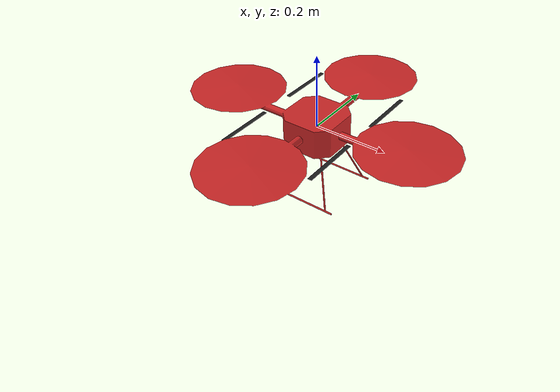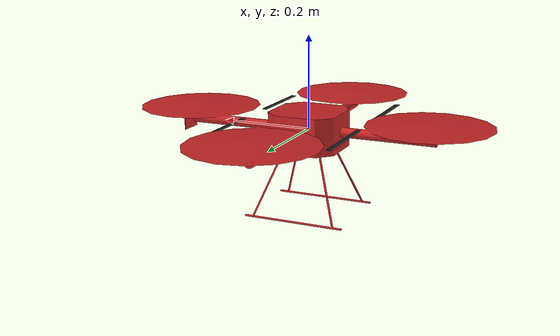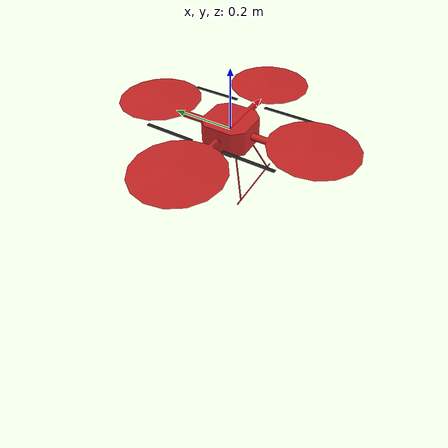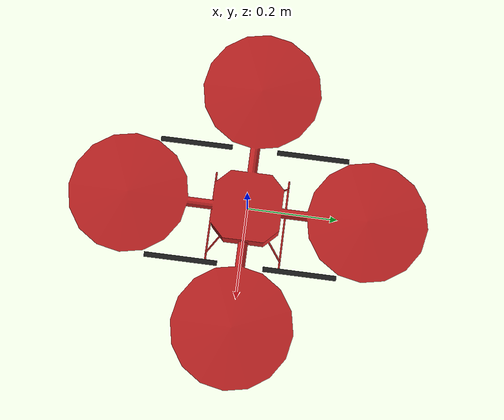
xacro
<?xml version="1.0"?>
<robot xmlns:xacro="http://www.ros.org/wiki/xacro" name="Parrot">
	<xacro:property name="width" value="0.0315" />
	<xacro:property name="length" value="0.45" />
	<xacro:property name="height" value="0.01" />
	<xacro:property name="mass_fr" value="2.1" />
	<xacro:property name="mass_pr" value="0.0055" />
	<xacro:property name="pi_value" value="3.14159263" />
	<xacro:property name="radiusp" value="0.20" />
	<xacro:property name="prop_loc" value="0.14" />
	<xacro:include filename="$(find first_version_proj)/urdf/material.xacro" />
	<xacro:include filename="$(find first_version_proj)/urdf/parrot.gazebo" />
	<!-- Define inertial macro -->
	<xacro:macro name="default_inertial" params="mass p ix_value iy_value iz_value" >
		<inertial>
			<origin xyz="0 0 0" rpy="0 0 ${p}" />
			<mass value="${mass}" />
			<inertia ixx="${ix_value}" ixy="0" ixz="0"
					 iyy="${iy_value}" iyz="0" izz="${iz_value}" />
		</inertial>
	</xacro:macro>
	<link name="base_link1">
        <!--origin xyz="0 0 0" rpy="0 0 ${pi_value/4}" /-->
		<origin xyz="0 0 0" rpy="0 0 0" />
		<visual>
			<origin xyz="0 0 0" rpy="0 0 0" />

			<geometry>
				<mesh filename="package://first_version_proj/meshes/quadrotor_3.dae" scale="1 1 1" />
			</geometry>
			<material name="red" />
		</visual>

		<collision>
			<origin xyz="0 0 0.0" rpy="0 0 0" />
			<geometry>
				<box size="0.5842 0.5842 0.06" />
			</geometry>
		</collision>

		<xacro:default_inertial mass="${mass_fr}" p="${pi_value/4}" ix_value="${0.04989/2}" iy_value="${0.04989/2}" iz_value="${0.24057/2}" />

	</link>

    <link name="prop_front_right">
		<visual>
			<origin xyz="0 0 0" rpy="0 0 0" />

			<geometry>
				<box size="${0.03302/3} ${radiusp*0.8} ${0.001}" />
			</geometry>

			<material name="black" />
		</visual>

		<collision>
			<origin xyz="0 0 0" rpy="0 0 0" />

			<geometry>
				<box size="${0.03302/3} ${radiusp*0.8} ${0.001}" />
			</geometry>
		</collision>

		<xacro:default_inertial mass="${mass_pr}" p="${0}" ix_value="${0}" iy_value="${0}" iz_value="${4.42448e-5}" />
	</link>

    <link name="prop_front_left">
		<visual>
			<origin xyz="0 0 0" rpy="0 0 0" />

			<geometry>
				<box size="${0.03302/3} ${radiusp*0.8} ${0.001}" />
			</geometry>

			<material name="black"/>
		</visual>

		<collision>
			<origin xyz="0 0 0" rpy="0 0 0" />

			<geometry>
				<box size="${0.03302/3} ${radiusp*0.8} ${0.001}" />
			</geometry>
		</collision>

		<xacro:default_inertial mass="${mass_pr}" p="${0}"  ix_value="${0}" iy_value="${0}" iz_value="${4.42448e-5}" />

	</link>

	<link name="prop_back_right">
		<visual>
			<origin xyz="0 0 0" rpy="0 0 0" />

			<geometry>
				<box size="${0.03302/3} ${radiusp*0.8} ${0.001}" />
			</geometry>

			<material name="black"/>
		</visual>

		<collision>
			<origin xyz="0 0 0" rpy="0 0 0" />

			<geometry>
				<box size="${0.03302/3} ${radiusp*0.8} ${0.001}" />
			</geometry>
		</collision>

		<xacro:default_inertial mass="${mass_pr}" p="${0}"  ix_value="${0}" iy_value="${0}" iz_value="${4.42448e-5}" />

	</link>

	<link name="prop_back_left">
		<visual>
			<origin xyz="0 0 0" rpy="0 0 0" />

			<geometry>
				<box size="${0.03302/3} ${radiusp*0.8} ${0.001}" />
			</geometry>

			<material name="black"/>
		</visual>

		<collision>
			<origin xyz="0 0 0" rpy="0 0 0" />

			<geometry>
				<box size="${0.03302/3} ${radiusp*0.8} ${0.001}" />
			</geometry>
		</collision>

		<xacro:default_inertial mass="${mass_pr}" p="${0}"  ix_value="${0}" iy_value="${0}" iz_value="${4.42448e-5}" />
	</link>

	<link name="vertical_camera_link">
		<visual>
			<origin xyz="0 0 0" rpy="0 0 0" />
			<geometry>
				<box size="0.002 0.01 0.005" />
			</geometry>

			<material name="red" />

		</visual>

		<collision>
			<origin xyz="0 0 0" rpy="0 0 0" />
			<geometry>
				<box size="0.01 0.01 0.005" />
			</geometry>
		</collision>

		<xacro:default_inertial mass="${1e-5}" p="${0}" ix_value="${1e-6}" iy_value="${1e-6}" iz_value="${1e-6}" />
	</link>

	<link name="front_camera_link">
		<visual>
			<origin xyz="0 0 0" rpy="0 0 0" />
			<geometry>
				<box size="0.002 0.05 0.05" />
			</geometry>

			<material name="red" />

		</visual>

		<collision>
			<origin xyz="0 0 0" rpy="0 0 0" />
			<geometry>
				<box size="0.002 0.05 0.05" />
			</geometry>
		</collision>

		<xacro:default_inertial mass="${1e-5}" p="${0}" ix_value="${1e-6}" iy_value="${1e-6}" iz_value="${1e-6}" />
	</link>

    <link name="gyro_link">
      <inertial>
        <mass value="0.001"/>
        <origin xyz="0 0 0" rpy="0 0 0"/>
        <inertia ixx="0.0001" ixy="0" ixz="0"
                 iyy="0.000001" iyz="0"
                 izz="0.0001"/>
      </inertial>
    </link>

    <joint name="joint_front_right_prop" type="continuous">
		<parent link="base_link1" />
		<child link="prop_front_right" />
		<origin xyz="${prop_loc - 0.01} ${prop_loc - 0.01} 0.021" rpy="0 0 0"/>
		<axis xyz="0 0 1" />
	</joint>

    <!-- Define joint between prop fl and frame -->
	<joint name="joint_front_left_prop" type="continuous">
		<parent link="base_link1" />
		<child link="prop_front_left" />
		<origin xyz="${-prop_loc + 0.01} ${prop_loc - 0.01} 0.021" rpy="0 0 0" />
		<axis xyz="0 0 1" />
	</joint>
<!-- Define joint between prop br and frame -->
	<joint name="joint_back_right_prop" type="continuous">
		<parent link="base_link1" />
		<child link="prop_back_right" />
		<origin xyz="${prop_loc - 0.01} ${-prop_loc + 0.01} 0.021" rpy="0 0 0" />
		<axis xyz="0 0 1" />
	</joint>
<!-- Define joint between prop br and frame -->
	<joint name="joint_back_left_prop" type="continuous">
		<parent link="base_link1" />
		<child link="prop_back_left" />
		<origin xyz="${-prop_loc + 0.01} ${-prop_loc + 0.01} 0.021" rpy="0 0 0" />
		<axis xyz="0 0 1" />
	</joint>

	<joint name="joint_vertical_camera_frame" type="fixed">
		<parent link="base_link1" />
		<child link="vertical_camera_link" />
		<origin xyz="0.0 0.0 -0.008" rpy="0 ${pi_value/2} 0" />
		<axis xyz="0 0 1" />
	</joint>

	<joint name="joint_front_camera_frame" type="fixed">
		<parent link="base_link1" />
		<child link="front_camera_link" />
		<origin xyz="0.2921 0.0 0.0" rpy="0 0 0" />
		<axis xyz="1 0 0" />
	</joint>

	<joint name="gyro_joint" type="fixed">
      <axis xyz="0 0 1"/>
      <origin xyz="0.0 0.0 0.0202" rpy="0 0 0"/>
      <parent link="base_link1"/>
      <child link="gyro_link"/>
    </joint>

    <transmission name="front_right_motor_joint" >
		<type>transmission_interface/SimpleTransmission</type>
		<joint name="joint_front_right_prop">
			<hardwareInterface>hardware_interface/VelocityJointInterface</hardwareInterface>
		</joint>
		<actuator name="BLDC_motor1">
			<hardwareInterface>hardware_interface/VelocityJointInterface</hardwareInterface>
			<mechanicalReduction>1</mechanicalReduction>
		</actuator>
	</transmission>

	<transmission name="front_left_motor_joint" >
		<type>transmission_interface/SimpleTransmission</type>
		<joint name="joint_front_left_prop">
			<hardwareInterface>hardware_interface/VelocityJointInterface</hardwareInterface>
		</joint>
		<actuator name="BLDC_motor2">
			<hardwareInterface>hardware_interface/VelocityJointInterface</hardwareInterface>
			<mechanicalReduction>1</mechanicalReduction>
		</actuator>
	</transmission>

	<transmission name="back_right_motor_joint" >
		<type>transmission_interface/SimpleTransmission</type>
		<joint name="joint_back_right_prop">
			<hardwareInterface>hardware_interface/VelocityJointInterface</hardwareInterface>
		</joint>
		<actuator name="BLDC_motor3">
			<hardwareInterface>hardware_interface/VelocityJointInterface</hardwareInterface>
			<mechanicalReduction>1</mechanicalReduction>
		</actuator>
	</transmission>

	<transmission name="back_left_motor_joint" >
		<type>transmission_interface/SimpleTransmission</type>
		<joint name="joint_back_left_prop">
			<hardwareInterface>hardware_interface/VelocityJointInterface</hardwareInterface>
		</joint>
		<actuator name="BLDC_motor4">
			<hardwareInterface>hardware_interface/VelocityJointInterface</hardwareInterface>
			<mechanicalReduction>1</mechanicalReduction>
		</actuator>
	</transmission>
</robot>
